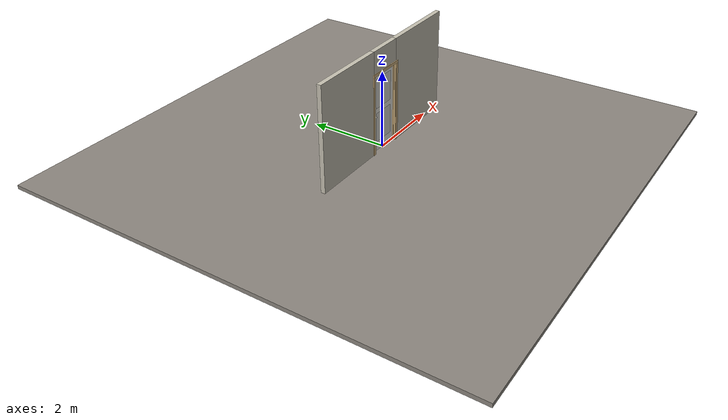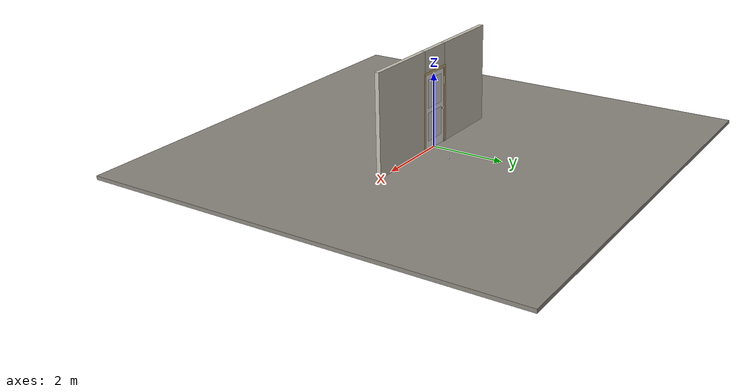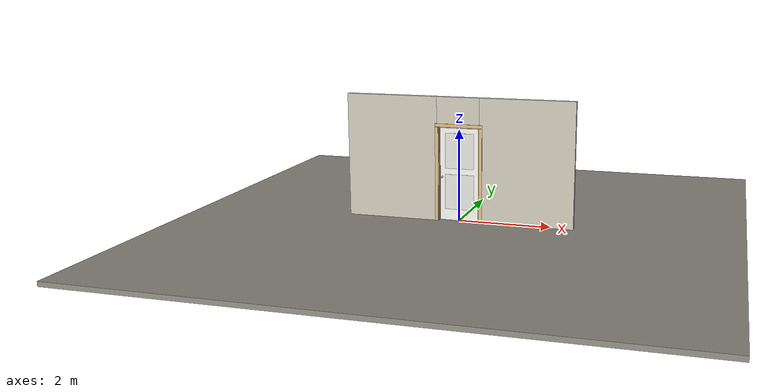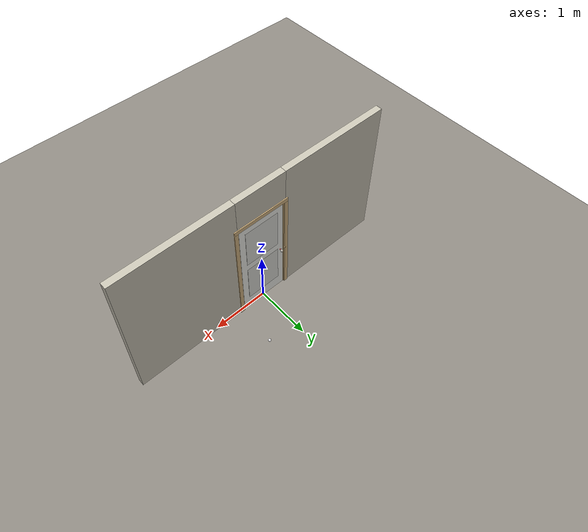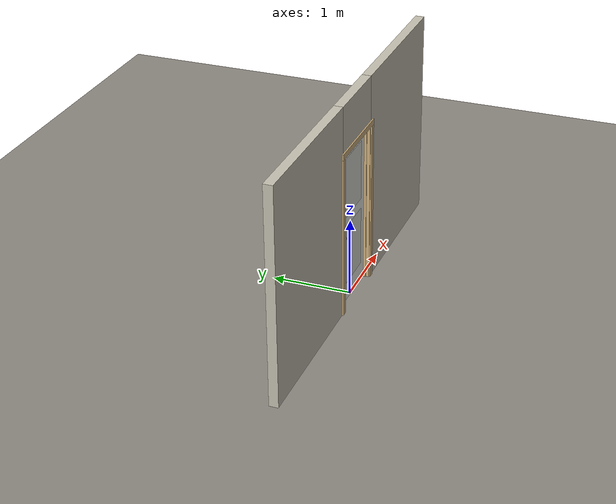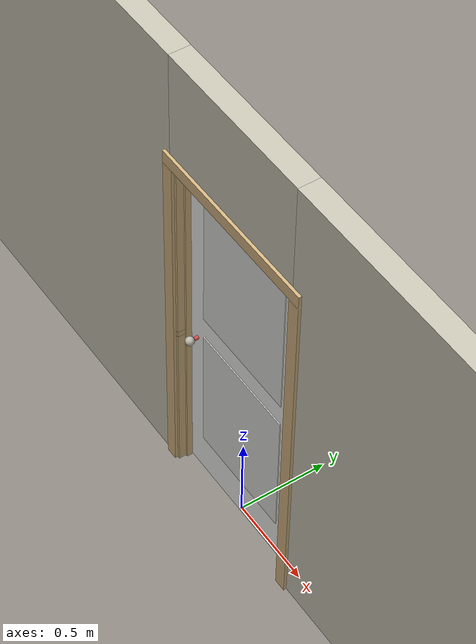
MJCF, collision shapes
<?xml version="1.0" ?>
<mujoco model="db0133_swing_single_full">
  <compiler angle="radian" meshdir="../../hardware" texturedir="../../textures" autolimits="true" inertiafromgeom="false"/>
  <option timestep="0.002" integrator="implicitfast" cone="elliptic" impratio="10" noslip_iterations="3">
    <flag multiccd="enable"/>
  </option>
  <size memory="16M"/>
  <default>
    <geom condim="4" solref="0.005 1" solimp="0.95 0.99 0.001"/>
    <joint solreflimit="0.005 1" solimplimit="0.95 0.99 0.001"/>
    <tendon solreflimit="0.005 1"/>
    <equality solref="0.002 1"/>
  </default>
  <visual>
    <headlight ambient="0.4 0.4 0.4" diffuse="0.7 0.7 0.7" specular="0.2 0.2 0.2"/>
    <quality shadowsize="4096"/>
    <map znear="0.01" zfar="60"/>
  </visual>
  <asset>
    <mesh name="coat_hook_d622d37ad0" file="coat_hook_d622d37ad0.obj"/>
    <mesh name="hinge_9ae1f9b7de" file="hinge_9ae1f9b7de.obj"/>
    <mesh name="hinge_jamb_50e97ebc96" file="hinge_jamb_50e97ebc96.obj"/>
    <mesh name="knob_248d825e64" file="knob_248d825e64.obj"/>
    <mesh name="knob_d1888f6f03" file="knob_d1888f6f03.obj"/>
    <material name="mat_floor" rgba="0.55 0.53 0.5 1" specular="0.2" shininess="0.15" reflectance="0"/>
    <material name="mat_wall" rgba="0.78 0.76 0.7 1" specular="0.2" shininess="0.1" reflectance="0"/>
    <material name="mat_leaf" rgba="0.93 0.93 0.91 1" specular="0.2" shininess="0.44" reflectance="0"/>
    <material name="mat_leaf_panel" rgba="0.856 0.856 0.837 1" specular="0.2" shininess="0.44" reflectance="0"/>
    <material name="mat_hinge" rgba="0.65 0.66 0.68 1" specular="0.74" shininess="0.5" reflectance="0.36"/>
    <material name="mat_op_nickel_satin" rgba="0.72 0.7 0.66 1" specular="0.8" shininess="0.65" reflectance="0.4"/>
    <material name="mat_trim" rgba="0.85 0.66 0.3 1" specular="0.8" shininess="0.75" reflectance="0.4"/>
    <material name="mat_bolt" rgba="0.85 0.66 0.3 1" specular="0.8" shininess="0.75" reflectance="0.4"/>
    <material name="mat_frame" rgba="0.82 0.7 0.5 1" specular="0.2" shininess="0.45" reflectance="0"/>
    <material name="mat_hook" rgba="0.9 0.9 0.92 1" specular="0.8" shininess="0.9" reflectance="0.4"/>
    <material name="mat_stop" rgba="0.9 0.9 0.92 1" specular="0.8" shininess="0.9" reflectance="0.4"/>
    <texture name="skybox" type="skybox" builtin="gradient" rgb1="0.6 0.7 0.85" rgb2="0.9 0.92 0.95" width="256" height="256"/>
  </asset>
  <worldbody>
    <light name="sun" pos="1.5 -2.5 4" dir="-0.3 0.5 -0.8" directional="true" diffuse="0.8 0.8 0.8" specular="0.3 0.3 0.3" castshadow="true"/>
    <light name="fill" pos="-1.5 2.5 3" dir="0.3 -0.5 -0.7" directional="true" diffuse="0.35 0.35 0.4" castshadow="false"/>
    <camera name="robot_view" pos="0 -2.575187 1.734312" xyaxes="1 0 0 0 0.26963 0.962964" fovy="52"/>
    <camera name="far_view" pos="0 2.509187 1.734312" xyaxes="-1 0 0 0 -0.26963 0.962964" fovy="52"/>
    <camera name="iso" pos="-1.932062 -2.168438 2.141063" xyaxes="0.741536 -0.670913 0 0.242917 0.268487 0.932151" fovy="46"/>
    <camera name="detail_handle" pos="-0.1915 -0.864 1.245" xyaxes="0.97561 0.219512 0 -0.070934 0.315262 0.94635" fovy="38"/>
    <geom name="floor" type="box" size="6 6 0.05" pos="0 0 -0.05" material="mat_floor" group="0" contype="1" conaffinity="1" friction="0.8 0.005 0.0001" density="2400"/>
    <geom name="wall_left" type="box" size="1.00775 0.0575 1.35" pos="-1.49225 -0.033 1.35" material="mat_wall" group="0" contype="1" conaffinity="1" friction="0.6 0.005 0.0001" density="800"/>
    <geom name="wall_right" type="box" size="1.02275 0.0575 1.35" pos="1.47725 -0.033 1.35" material="mat_wall" group="0" contype="1" conaffinity="1" friction="0.6 0.005 0.0001" density="800"/>
    <geom name="wall_header" type="box" size="0.4695 0.0575 0.303" pos="-0.015 -0.033 2.397" material="mat_wall" group="0" contype="1" conaffinity="1" friction="0.6 0.005 0.0001" density="800"/>
    <geom name="hinge_0_jamb" type="mesh" mesh="hinge_jamb_50e97ebc96" pos="0.4325 0.0245 0.259" quat="0 0 0 1" material="mat_hinge" group="1" contype="0" conaffinity="0" density="7850"/>
    <geom name="hinge_1_jamb" type="mesh" mesh="hinge_jamb_50e97ebc96" pos="0.4325 0.0245 1.861" quat="0 0 0 1" material="mat_hinge" group="1" contype="0" conaffinity="0" density="7850"/>
    <geom name="jamb_hinge" type="box" size="0.0095 0.0575 1.0225" pos="0.445 -0.033 1.0225" material="mat_frame" group="0" contype="1" conaffinity="1" friction="0.6 0.005 0.0001" density="400"/>
    <geom name="strike_965_wall_n" type="box" size="0.0245 0.041325 0.0167" pos="-0.46 -0.049175 0.965" material="mat_frame" group="0" contype="1" conaffinity="1" friction="0.6 0.005 0.0001" density="400"/>
    <geom name="strike_965_wall_p" type="box" size="0.0245 0.008 0.0167" pos="-0.46 0.01585 0.965" material="mat_frame" group="0" contype="1" conaffinity="1" friction="0.6 0.005 0.0001" density="400"/>
    <geom name="strike_965_ramp" type="box" size="0.0245 0.01649 0.0167" pos="-0.464636 0.028673 0.965" quat="0.977148 0 0 0.212558" material="mat_frame" group="0" contype="1" conaffinity="1" friction="0.12 0.005 0.0001" density="400"/>
    <geom name="strike_965_back" type="box" size="0.01615 0.00785 0.0167" pos="-0.46835 0 0.965" material="mat_frame" group="0" contype="1" conaffinity="1" friction="0.6 0.005 0.0001" density="400"/>
    <geom name="jamb_strike_0" type="box" size="0.0245 0.0575 0.47415" pos="-0.46 -0.033 0.47415" material="mat_frame" group="0" contype="1" conaffinity="1" friction="0.6 0.005 0.0001" density="400"/>
    <geom name="jamb_strike_1" type="box" size="0.0245 0.0575 0.53165" pos="-0.46 -0.033 1.51335" material="mat_frame" group="0" contype="1" conaffinity="1" friction="0.6 0.005 0.0001" density="400"/>
    <geom name="jamb_head" type="box" size="0.4695 0.0575 0.0095" pos="-0.015 -0.033 2.0545" material="mat_frame" group="0" contype="1" conaffinity="1" friction="0.6 0.005 0.0001" density="400"/>
    <geom name="head_stud" type="box" size="0.4695 0.0575 0.015" pos="-0.015 -0.033 2.079" material="mat_wall" group="0" contype="1" conaffinity="1" friction="0.6 0.005 0.0001" density="500"/>
    <geom name="stop_hinge" type="box" size="0.0055 0.016 1.0225" pos="0.43 -0.034 1.0225" material="mat_frame" group="0" contype="1" conaffinity="1" friction="0.6 0.005 0.0001" density="400"/>
    <geom name="stop_strike" type="box" size="0.0055 0.016 1.0225" pos="-0.43 -0.034 1.0225" material="mat_frame" group="0" contype="1" conaffinity="1" friction="0.6 0.005 0.0001" density="400"/>
    <geom name="stop_head" type="box" size="0.4355 0.016 0.0055" pos="0 -0.034 2.0395" material="mat_frame" group="0" contype="1" conaffinity="1" friction="0.6 0.005 0.0001" density="400"/>
    <geom name="casing_l_n" type="box" size="0.035 0.008 1.032" pos="-0.4845 -0.0985 1.0225" material="mat_frame" group="2" contype="0" conaffinity="0" density="400"/>
    <geom name="casing_r_n" type="box" size="0.035 0.008 1.032" pos="0.4845 -0.0985 1.0225" material="mat_frame" group="2" contype="0" conaffinity="0" density="400"/>
    <geom name="casing_h_n" type="box" size="0.5195 0.008 0.035" pos="0 -0.0985 2.094" material="mat_frame" group="2" contype="0" conaffinity="0" density="400"/>
    <geom name="casing_l_p" type="box" size="0.035 0.008 1.032" pos="-0.4845 0.0325 1.0225" material="mat_frame" group="2" contype="0" conaffinity="0" density="400"/>
    <geom name="casing_r_p" type="box" size="0.035 0.008 1.032" pos="0.4845 0.0325 1.0225" material="mat_frame" group="2" contype="0" conaffinity="0" density="400"/>
    <geom name="casing_h_p" type="box" size="0.5195 0.008 0.035" pos="0 0.0325 2.094" material="mat_frame" group="2" contype="0" conaffinity="0" density="400"/>
    <geom name="floor_stop_dome" type="sphere" size="0.025" pos="0.516431 0.754362 0" material="mat_stop" group="0" contype="1" conaffinity="1" friction="0.6 0.005 0.0001" density="7000"/>
    <site name="approach_point" pos="0 -1.5 0" quat="1 0 0 0" size="0.05" rgba="0.2 0.9 0.2 0.5" group="4"/>
    <site name="goal_point" pos="0 1.5 0" quat="1 0 0 0" size="0.05" rgba="0.2 0.9 0.2 0.5" group="4"/>
    <site name="door_plane_center" pos="0 0 1.0225" quat="1 0 0 0" size="0.02" rgba="0.2 0.9 0.2 0.5" group="4"/>
    <body name="leaf" pos="0.4355 0 0">
      <inertial pos="-0.429045 0.000514 1.028551" mass="14.990315" quat="0.499804 0.500589 -0.499194 0.500412" diaginertia="0.958329556 5.227300489 6.182092424"/>
      <joint name="leaf_hinge" type="hinge" axis="0 0 -1" pos="-0.003 0.0245 0" limited="true" range="0 1.658063" damping="0.254501" frictionloss="0.125521" armature="0.02"/>
      <geom name="leaf_slab" type="box" size="0.432 0.0175 1.016" pos="-0.435 0 1.025" material="mat_leaf" group="0" contype="1" conaffinity="1" friction="0.35 0.005 0.0001" density="1"/>
      <geom name="leaf_panel_0_n" type="box" size="0.31696 0.003 0.38422" pos="-0.435 -0.0205 0.63674" material="mat_leaf_panel" group="1" contype="0" conaffinity="0" density="1"/>
      <geom name="leaf_panel_0_p" type="box" size="0.31696 0.003 0.38422" pos="-0.435 0.0205 0.63674" material="mat_leaf_panel" group="1" contype="0" conaffinity="0" density="1"/>
      <geom name="leaf_panel_1_n" type="box" size="0.31696 0.003 0.38422" pos="-0.435 -0.0205 1.53518" material="mat_leaf_panel" group="1" contype="0" conaffinity="0" density="1"/>
      <geom name="leaf_panel_1_p" type="box" size="0.31696 0.003 0.38422" pos="-0.435 0.0205 1.53518" material="mat_leaf_panel" group="1" contype="0" conaffinity="0" density="1"/>
      <geom name="hinge_0" type="mesh" mesh="hinge_9ae1f9b7de" pos="-0.003 0.0245 0.259" quat="0 0 0 1" material="mat_hinge" group="1" contype="0" conaffinity="0" density="7850"/>
      <geom name="hinge_1" type="mesh" mesh="hinge_9ae1f9b7de" pos="-0.003 0.0245 1.861" quat="0 0 0 1" material="mat_hinge" group="1" contype="0" conaffinity="0" density="7850"/>
      <geom name="leaf_latch_bolt_faceplate" type="box" size="0.0006 0.01235 0.0267" pos="-0.8664 0 0.965" material="mat_bolt" group="1" contype="0" conaffinity="0" density="8500"/>
      <geom name="coat_hook" type="mesh" mesh="coat_hook_d622d37ad0" pos="-0.435 0.0175 1.691" quat="0 0 0.707107 0.707107" material="mat_hook" group="2" contype="0" conaffinity="0" density="7000"/>
      <site name="leaf_edge_mid" pos="-0.867 0 1.016" quat="1 0 0 0" size="0.02" rgba="0.2 0.9 0.2 0.5" group="4"/>
      <body name="leaf_handle" pos="-0.807 0 0.965">
        <inertial pos="0 0.000216 0" mass="1.146661" quat="0.5 0.5 0.5 0.5" diaginertia="0.000312402 0.003728942 0.003728942"/>
        <joint name="leaf_handle_hinge" type="hinge" axis="0 1 0" limited="true" range="0 0.87" damping="0.143613" frictionloss="0.038" stiffness="0.5" springref="-0.5" armature="0.01"/>
        <geom name="leaf_handle_spindle" type="cylinder" size="0.006 0.0255" pos="0 0 0" quat="0.707107 -0.707107 0 0" material="mat_op_nickel_satin" group="1" contype="0" conaffinity="0" density="7850"/>
        <geom name="leaf_handle_knob_n" type="mesh" mesh="knob_d1888f6f03" pos="0 -0.0175 0" quat="0 0 -0.707107 0.707107" material="mat_op_nickel_satin" group="1" contype="0" conaffinity="0" density="3000"/>
        <geom name="leaf_handle_knob_col_n" type="sphere" size="0.0243" pos="0 -0.064 0" material="mat_op_nickel_satin" group="0" contype="1" conaffinity="1" friction="0.9 0.01 0.0001" density="3000"/>
        <geom name="leaf_handle_knob_neck_n" type="cylinder" size="0.011 0.012" pos="0 -0.0295 0" quat="0.707107 -0.707107 0 0" material="mat_op_nickel_satin" group="3" contype="1" conaffinity="1" rgba="0.8 0.3 0.3 0.25" friction="0.6 0.005 0.0001" density="3000"/>
        <geom name="leaf_handle_knob_p" type="mesh" mesh="knob_248d825e64" pos="0 0.0175 0" quat="0 0 0.707107 0.707107" material="mat_op_nickel_satin" group="1" contype="0" conaffinity="0" density="3000"/>
        <geom name="leaf_handle_knob_col_p" type="sphere" size="0.0243" pos="0 0.064 0" material="mat_op_nickel_satin" group="0" contype="1" conaffinity="1" friction="0.9 0.01 0.0001" density="3000"/>
        <geom name="leaf_handle_knob_neck_p" type="cylinder" size="0.011 0.012" pos="0 0.0295 0" quat="0.707107 -0.707107 0 0" material="mat_op_nickel_satin" group="3" contype="1" conaffinity="1" rgba="0.8 0.3 0.3 0.25" friction="0.6 0.005 0.0001" density="3000"/>
        <site name="leaf_handle_grip_n" pos="0 -0.064 0" quat="1 0 0 0" size="0.012" rgba="0.2 0.9 0.2 0.5" group="4"/>
        <site name="leaf_handle_grip_p" pos="0 0.064 0" quat="1 0 0 0" size="0.012" rgba="0.2 0.9 0.2 0.5" group="4"/>
      </body>
      <body name="leaf_latch_bolt" pos="-0.867 0 0.965">
        <inertial pos="0.00865 0 0" mass="0.041419" quat="0.92388 0.382683 0 0" diaginertia="0.000000798 0.000005598 0.000005598"/>
        <joint name="leaf_latch_bolt_slide" type="slide" axis="1 0 0" limited="true" range="0 0.0127" damping="2" frictionloss="0.3" stiffness="300" springref="-0.008333" armature="0.1"/>
        <geom name="leaf_latch_bolt_capsule" type="capsule" size="0.00635 0.015" pos="0.00865 0 0" quat="0.707107 0 -0.707107 0" material="mat_bolt" group="0" contype="1" conaffinity="1" friction="0.2 0.005 0.0001" density="8500"/>
      </body>
    </body>
  </worldbody>
  <tendon>
    <fixed name="leaf_latch_bolt_coupling" limited="true" range="0 10">
      <joint joint="leaf_latch_bolt_slide" coef="1"/>
      <joint joint="leaf_handle_hinge" coef="-0.015679"/>
    </fixed>
  </tendon>
  <sensor>
    <jointpos name="leaf_hinge_pos" joint="leaf_hinge"/>
    <jointvel name="leaf_hinge_vel" joint="leaf_hinge"/>
    <jointpos name="leaf_handle_hinge_pos" joint="leaf_handle_hinge"/>
    <jointvel name="leaf_handle_hinge_vel" joint="leaf_handle_hinge"/>
    <jointpos name="leaf_latch_bolt_slide_pos" joint="leaf_latch_bolt_slide"/>
    <jointvel name="leaf_latch_bolt_slide_vel" joint="leaf_latch_bolt_slide"/>
  </sensor>
</mujoco>
